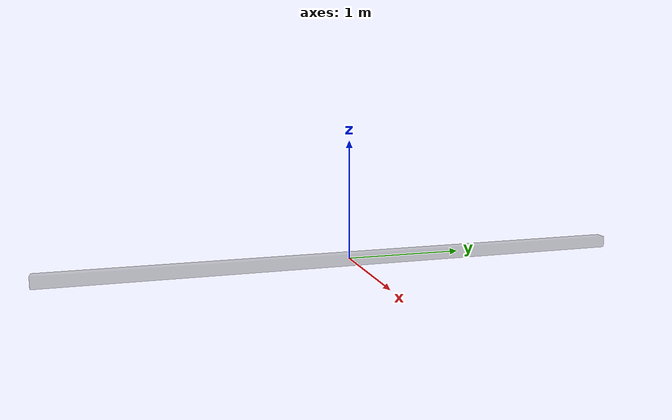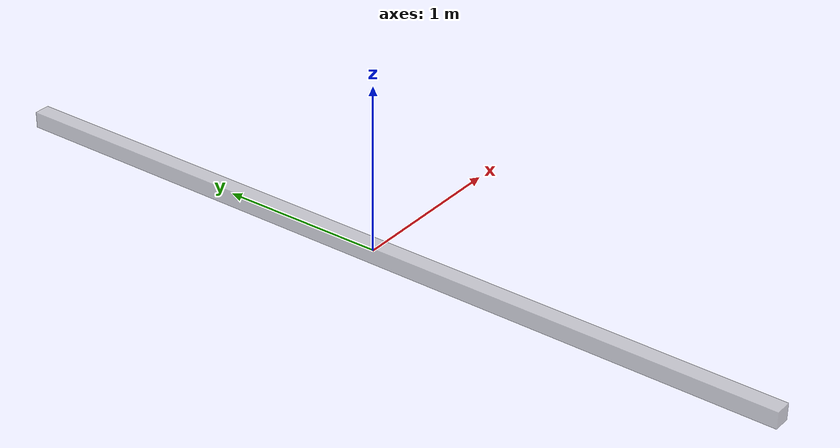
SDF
<?xml version='1.0'?>
<sdf version='1.6'>
  <model name='bare_beam'>
    <link name='beam'>
      <inertial>
        <mass>0.1</mass>
        <inertia>
          <ixx>0.208417</ixx>
          <ixy>0</ixy>
          <ixz>0</ixz>
          <iyy>0.00016667</iyy>
          <iyz>0</iyz>
          <izz>0.208417</izz>
        </inertia>
        <pose frame=''>0 0 0 0 -0 0</pose>
      </inertial>
      <self_collide>0</self_collide>
      <enable_wind>0</enable_wind>
      <kinematic>0</kinematic>
      <pose frame=''>0 0 0 0 -0 0</pose>
      <gravity>1</gravity>
      <visual name='visual'>
        <geometry>
          <box>
            <size>0.1 5 0.1</size>
          </box>
        </geometry>
        <material>
          <script>
            <name>Gazebo/Grey</name>
            <uri>file://media/materials/scripts/gazebo.material</uri>
          </script>
          <shader type='pixel'>
            <normal_map>__default__</normal_map>
          </shader>
        </material>
        <pose frame=''>0 0 0 0 -0 0</pose>
        <transparency>0.5</transparency>
        <cast_shadows>1</cast_shadows>
      </visual>
      <collision name='collision'>
        <laser_retro>0</laser_retro>
        <max_contacts>10</max_contacts>
        <pose frame=''>0 0 0 0 -0 0</pose>
        <geometry>
          <box>
            <size>0.1 5 0.1</size>
          </box>
        </geometry>
        <surface>
          <friction>
            <ode>
              <mu>1</mu>
              <mu2>1</mu2>
              <fdir1>0 0 0</fdir1>
              <slip1>0</slip1>
              <slip2>0</slip2>
            </ode>
            <torsional>
              <coefficient>1</coefficient>
              <patch_radius>0</patch_radius>
              <surface_radius>0</surface_radius>
              <use_patch_radius>1</use_patch_radius>
              <ode>
                <slip>0</slip>
              </ode>
            </torsional>
          </friction>
        </surface>
      </collision>
    </link>
    <static>0</static>
    <allow_auto_disable>1</allow_auto_disable>

	<plugin name="DSCC_2020_init_plugin" filename="libDSCC_2020_init_plugin.so"/>
  </model>
</sdf>
